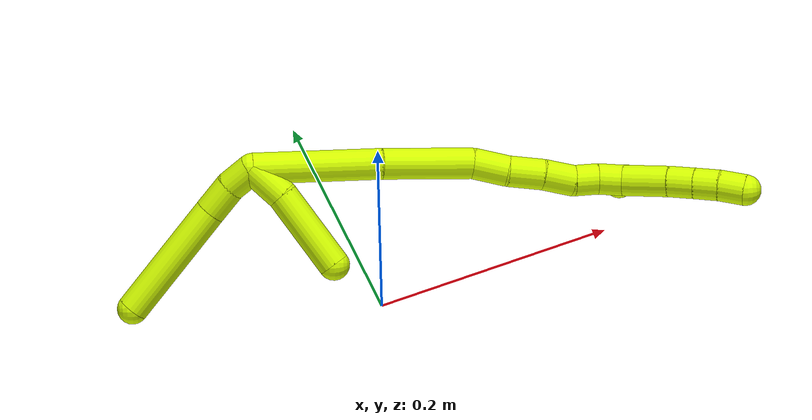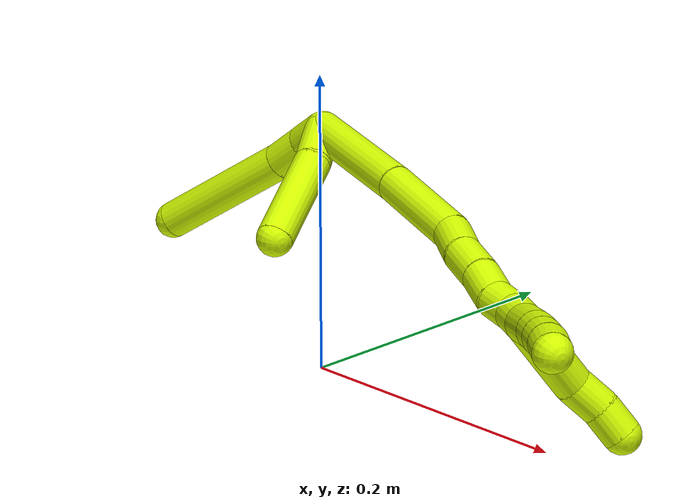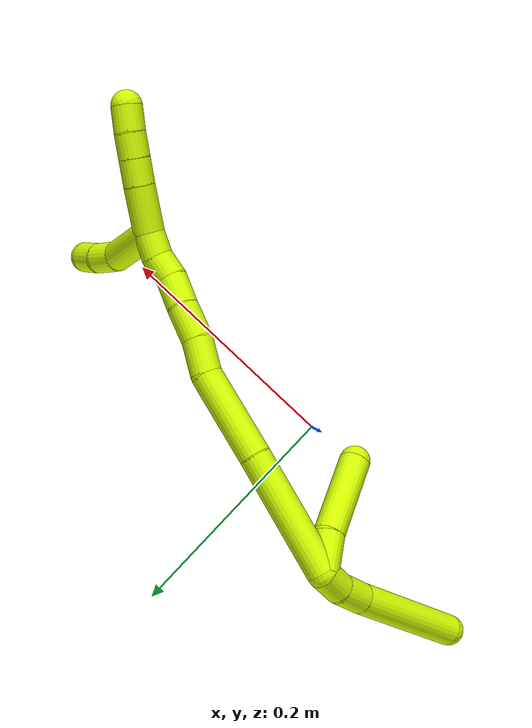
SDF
<sdf version="1.7">
 <world name="default">
  <model name="photoneo_s_sensor">
   <static>1</static>
   <pose>0 0 2 1.57079 1.57079 3.14159</pose>
   <link name="link">
    <inertial><mass>0.1</mass></inertial>
    <sensor name="sensor" type="depth">
     <update_rate>30</update_rate>
     <camera>
      <horizontal_fov>1.22</horizontal_fov>
      <image><width>1920</width><height>1200</height><format>B8G8R8</format></image>
      <clip><near>0.1</near><far>4</far></clip>
      <depth_camera><output>points</output></depth_camera>
     </camera>
     <plugin name="camera_plugin" filename="libgazebo_ros_depth_camera.so">
      <baseline>0.2</baseline>
      <alwaysOn>1</alwaysOn>
      <updateRate>0.0</updateRate>
      <cameraName>camera_ir</cameraName>
      <imageTopicName>/camera/color/image_raw</imageTopicName>
      <cameraInfoTopicName>/camera/color/camera_info</cameraInfoTopicName>
      <depthImageTopicName>/camera/depth/image_raw</depthImageTopicName>
      <depthImageCameraInfoTopicName>/camera/depth/camera_info</depthImageCameraInfoTopicName>
      <pointCloudTopicName>/camera/depth/points</pointCloudTopicName>
      <frameName>fr_optical</frameName>
      <pointCloudCutoff>0.1</pointCloudCutoff>
      <pointCloudCutoffMax>2.0</pointCloudCutoffMax>
      <distortionK1>0</distortionK1>
      <distortionK2>0</distortionK2>
      <distortionK3>0</distortionK3>
      <distortionT1>0</distortionT1>
      <distortionT2>0</distortionT2>
      <CxPrime>0</CxPrime>
      <Cx>0</Cx>
      <Cy>0</Cy>
      <focalLength>0</focalLength>
      <hackBaseline>0</hackBaseline>
     </plugin>
    </sensor>
   </link>
  </model>
  <model name="bin">
   <static>1</static>
   <link name="bottom">
    <collision name="collision-bottom">
     <pose>0 0 -0.01 0 -0 0</pose>
     <geometry><box><size>0.8 0.6 0.02</size></box></geometry>
     <surface>
      <friction><ode><mu>100</mu><mu2>100</mu2></ode></friction>
      <contact><collide_bitmask>65535</collide_bitmask></contact>
     </surface>
    </collision>
   </link>
   <link name="west_wall">
    <collision name="collision-west_wall">
     <pose>-0.41 0 0.1 0 -0 0</pose>
     <geometry><box><size>0.02 0.6 0.2</size></box></geometry>
     <surface>
      <friction><ode><mu>100</mu><mu2>100</mu2></ode></friction>
      <contact><collide_bitmask>65535</collide_bitmask></contact>
     </surface>
    </collision>
   </link>
   <link name="east_wall">
    <collision name="collision-east_wall">
     <pose>0.41 0 0.1 0 -0 0</pose>
     <geometry><box><size>0.02 0.6 0.2</size></box></geometry>
     <surface>
      <friction><ode><mu>100</mu><mu2>100</mu2></ode></friction>
      <contact><collide_bitmask>65535</collide_bitmask></contact>
     </surface>
    </collision>
   </link>
   <link name="south_wall">
    <collision name="collision-south_wall">
     <pose>0 -0.31 0.1 0 -0 0</pose>
     <geometry><box><size>0.8 0.02 0.2</size></box></geometry>
     <surface>
      <friction><ode><mu>100</mu><mu2>100</mu2></ode></friction>
      <contact><collide_bitmask>65535</collide_bitmask></contact>
     </surface>
    </collision>
   </link>
   <link name="north_wall">
    <collision name="collision-north_wall">
     <pose>0 0.31 0.1 0 -0 0</pose>
     <geometry><box><size>0.8 0.02 0.2</size></box></geometry>
     <surface>
      <friction><ode><mu>100</mu><mu2>100</mu2></ode></friction>
      <contact><collide_bitmask>65535</collide_bitmask></contact>
     </surface>
    </collision>
   </link>
  </model>
  <model name="15">
   <static>0</static>
   <link name="15">
    <collision name="collision-cylinder-e_1_2_8">
     <pose>0.006213 -0.004279 -0.009139 2.70371 0.551924 1.80963</pose>
     <geometry><cylinder><radius>0.0125</radius><length>0.0237</length></cylinder></geometry>
     <surface>
      <friction><ode><mu>1.16</mu><mu2>1.16</mu2><slip1>0</slip1><slip2>0</slip2></ode></friction>
      <contact><ode><kp>1e+06</kp><kd>1</kd><max_vel>0</max_vel><min_depth>0.001</min_depth></ode></contact>
     </surface>
    </collision>
    <visual name="visual-cylinder-e_1_2_8">
     <pose>0.006213 -0.004279 -0.009139 2.70371 0.551924 1.80963</pose>
     <geometry><cylinder><radius>0.0125</radius><length>0.0237</length></cylinder></geometry>
     <material><ambient>0.835294 1 0 1</ambient></material>
    </visual>
    <collision name="collision-cylinder-e_2_8_9">
     <pose>0.019079 -0.015809 -0.026937 2.44447 0.532208 1.28706</pose>
     <geometry><cylinder><radius>0.0125</radius><length>0.026217</length></cylinder></geometry>
     <surface>
      <friction><ode><mu>1.16</mu><mu2>1.16</mu2><slip1>0</slip1><slip2>0</slip2></ode></friction>
      <contact><ode><kp>1e+06</kp><kd>1</kd><max_vel>0</max_vel><min_depth>0.001</min_depth></ode></contact>
     </surface>
    </collision>
    <visual name="visual-cylinder-e_2_8_9">
     <pose>0.019079 -0.015809 -0.026937 2.44447 0.532208 1.28706</pose>
     <geometry><cylinder><radius>0.0125</radius><length>0.026217</length></cylinder></geometry>
     <material><ambient>0.835294 1 0 1</ambient></material>
    </visual>
    <collision name="collision-cylinder-e_3_9_6">
     <pose>0.04615 -0.054244 -0.068986 2.39034 0.420321 0.991682</pose>
     <geometry><cylinder><radius>0.0125</radius><length>0.100082</length></cylinder></geometry>
     <surface>
      <friction><ode><mu>1.16</mu><mu2>1.16</mu2><slip1>0</slip1><slip2>0</slip2></ode></friction>
      <contact><ode><kp>1e+06</kp><kd>1</kd><max_vel>0</max_vel><min_depth>0.001</min_depth></ode></contact>
     </surface>
    </collision>
    <visual name="visual-cylinder-e_3_9_6">
     <pose>0.04615 -0.054244 -0.068986 2.39034 0.420321 0.991682</pose>
     <geometry><cylinder><radius>0.0125</radius><length>0.100082</length></cylinder></geometry>
     <material><ambient>0.835294 1 0 1</ambient></material>
    </visual>
    <collision name="collision-cylinder-e_1_2_10">
     <pose>0.004195 -0.010602 0.011205 0.757783 0.265551 0.106249</pose>
     <geometry><cylinder><radius>0.0125</radius><length>0.031972</length></cylinder></geometry>
     <surface>
      <friction><ode><mu>1.16</mu><mu2>1.16</mu2><slip1>0</slip1><slip2>0</slip2></ode></friction>
      <contact><ode><kp>1e+06</kp><kd>1</kd><max_vel>0</max_vel><min_depth>0.001</min_depth></ode></contact>
     </surface>
    </collision>
    <visual name="visual-cylinder-e_1_2_10">
     <pose>0.004195 -0.010602 0.011205 0.757783 0.265551 0.106249</pose>
     <geometry><cylinder><radius>0.0125</radius><length>0.031972</length></cylinder></geometry>
     <material><ambient>0.835294 1 0 1</ambient></material>
    </visual>
    <collision name="collision-cylinder-e_2_10_5">
     <pose>0.019433 -0.047542 0.040884 0.959082 0.330637 0.173091</pose>
     <geometry><cylinder><radius>0.0125</radius><length>0.068028</length></cylinder></geometry>
     <surface>
      <friction><ode><mu>1.16</mu><mu2>1.16</mu2><slip1>0</slip1><slip2>0</slip2></ode></friction>
      <contact><ode><kp>1e+06</kp><kd>1</kd><max_vel>0</max_vel><min_depth>0.001</min_depth></ode></contact>
     </surface>
    </collision>
    <visual name="visual-cylinder-e_2_10_5">
     <pose>0.019433 -0.047542 0.040884 0.959082 0.330637 0.173091</pose>
     <geometry><cylinder><radius>0.0125</radius><length>0.068028</length></cylinder></geometry>
     <material><ambient>0.835294 1 0 1</ambient></material>
    </visual>
    <collision name="collision-cylinder-e_1_2_11">
     <pose>0.004143 0.000328 0.051298 -0.006392 0.080592 -0.000258</pose>
     <geometry><cylinder><radius>0.0125</radius><length>0.102932</length></cylinder></geometry>
     <surface>
      <friction><ode><mu>1.16</mu><mu2>1.16</mu2><slip1>0</slip1><slip2>0</slip2></ode></friction>
      <contact><ode><kp>1e+06</kp><kd>1</kd><max_vel>0</max_vel><min_depth>0.001</min_depth></ode></contact>
     </surface>
    </collision>
    <visual name="visual-cylinder-e_1_2_11">
     <pose>0.004143 0.000328 0.051298 -0.006392 0.080592 -0.000258</pose>
     <geometry><cylinder><radius>0.0125</radius><length>0.102932</length></cylinder></geometry>
     <material><ambient>0.835294 1 0 1</ambient></material>
    </visual>
    <collision name="collision-cylinder-e_2_11_12">
     <pose>0.013808 0.00082 0.138904 -0.004536 0.150917 -0.000343</pose>
     <geometry><cylinder><radius>0.0125</radius><length>0.073453</length></cylinder></geometry>
     <surface>
      <friction><ode><mu>1.16</mu><mu2>1.16</mu2><slip1>0</slip1><slip2>0</slip2></ode></friction>
      <contact><ode><kp>1e+06</kp><kd>1</kd><max_vel>0</max_vel><min_depth>0.001</min_depth></ode></contact>
     </surface>
    </collision>
    <visual name="visual-cylinder-e_2_11_12">
     <pose>0.013808 0.00082 0.138904 -0.004536 0.150917 -0.000343</pose>
     <geometry><cylinder><radius>0.0125</radius><length>0.073453</length></cylinder></geometry>
     <material><ambient>0.835294 1 0 1</ambient></material>
    </visual>
    <collision name="collision-cylinder-e_3_12_13">
     <pose>0.020599 -0.002879 0.189073 0.271888 0.087953 0.012039</pose>
     <geometry><cylinder><radius>0.0125</radius><length>0.028888</length></cylinder></geometry>
     <surface>
      <friction><ode><mu>1.16</mu><mu2>1.16</mu2><slip1>0</slip1><slip2>0</slip2></ode></friction>
      <contact><ode><kp>1e+06</kp><kd>1</kd><max_vel>0</max_vel><min_depth>0.001</min_depth></ode></contact>
     </surface>
    </collision>
    <visual name="visual-cylinder-e_3_12_13">
     <pose>0.020599 -0.002879 0.189073 0.271888 0.087953 0.012039</pose>
     <geometry><cylinder><radius>0.0125</radius><length>0.028888</length></cylinder></geometry>
     <material><ambient>0.835294 1 0 1</ambient></material>
    </visual>
    <collision name="collision-cylinder-e_4_13_14">
     <pose>0.023867 -0.008346 0.216979 0.113626 0.140506 0.008004</pose>
     <geometry><cylinder><radius>0.0125</radius><length>0.028557</length></cylinder></geometry>
     <surface>
      <friction><ode><mu>1.16</mu><mu2>1.16</mu2><slip1>0</slip1><slip2>0</slip2></ode></friction>
      <contact><ode><kp>1e+06</kp><kd>1</kd><max_vel>0</max_vel><min_depth>0.001</min_depth></ode></contact>
     </surface>
    </collision>
    <visual name="visual-cylinder-e_4_13_14">
     <pose>0.023867 -0.008346 0.216979 0.113626 0.140506 0.008004</pose>
     <geometry><cylinder><radius>0.0125</radius><length>0.028557</length></cylinder></geometry>
     <material><ambient>0.835294 1 0 1</ambient></material>
    </visual>
    <collision name="collision-cylinder-e_5_14_15">
     <pose>0.028737 -0.012242 0.24324 0.185603 0.226955 0.021213</pose>
     <geometry><cylinder><radius>0.0125</radius><length>0.02551</length></cylinder></geometry>
     <surface>
      <friction><ode><mu>1.16</mu><mu2>1.16</mu2><slip1>0</slip1><slip2>0</slip2></ode></friction>
      <contact><ode><kp>1e+06</kp><kd>1</kd><max_vel>0</max_vel><min_depth>0.001</min_depth></ode></contact>
     </surface>
    </collision>
    <visual name="visual-cylinder-e_5_14_15">
     <pose>0.028737 -0.012242 0.24324 0.185603 0.226955 0.021213</pose>
     <geometry><cylinder><radius>0.0125</radius><length>0.02551</length></cylinder></geometry>
     <material><ambient>0.835294 1 0 1</ambient></material>
    </visual>
    <collision name="collision-cylinder-e_6_15_16">
     <pose>0.03291 -0.01384 0.265502 -0.069056 0.128705 -0.004452</pose>
     <geometry><cylinder><radius>0.0125</radius><length>0.020312</length></cylinder></geometry>
     <surface>
      <friction><ode><mu>1.16</mu><mu2>1.16</mu2><slip1>0</slip1><slip2>0</slip2></ode></friction>
      <contact><ode><kp>1e+06</kp><kd>1</kd><max_vel>0</max_vel><min_depth>0.001</min_depth></ode></contact>
     </surface>
    </collision>
    <visual name="visual-cylinder-e_6_15_16">
     <pose>0.03291 -0.01384 0.265502 -0.069056 0.128705 -0.004452</pose>
     <geometry><cylinder><radius>0.0125</radius><length>0.020312</length></cylinder></geometry>
     <material><ambient>0.835294 1 0 1</ambient></material>
    </visual>
    <collision name="collision-cylinder-e_7_16_1">
     <pose>0.033588 -0.014799 0.28557 0.163515 -0.061511 -0.005042</pose>
     <geometry><cylinder><radius>0.0125</radius><length>0.020348</length></cylinder></geometry>
     <surface>
      <friction><ode><mu>1.16</mu><mu2>1.16</mu2><slip1>0</slip1><slip2>0</slip2></ode></friction>
      <contact><ode><kp>1e+06</kp><kd>1</kd><max_vel>0</max_vel><min_depth>0.001</min_depth></ode></contact>
     </surface>
    </collision>
    <visual name="visual-cylinder-e_7_16_1">
     <pose>0.033588 -0.014799 0.28557 0.163515 -0.061511 -0.005042</pose>
     <geometry><cylinder><radius>0.0125</radius><length>0.020348</length></cylinder></geometry>
     <material><ambient>0.835294 1 0 1</ambient></material>
    </visual>
    <collision name="collision-cylinder-e_1_1_17">
     <pose>0.058604 -0.006256 0.297151 -1.41883 1.18834 -1.0512</pose>
     <geometry><cylinder><radius>0.0125</radius><length>0.055276</length></cylinder></geometry>
     <surface>
      <friction><ode><mu>1.16</mu><mu2>1.16</mu2><slip1>0</slip1><slip2>0</slip2></ode></friction>
      <contact><ode><kp>1e+06</kp><kd>1</kd><max_vel>0</max_vel><min_depth>0.001</min_depth></ode></contact>
     </surface>
    </collision>
    <visual name="visual-cylinder-e_1_1_17">
     <pose>0.058604 -0.006256 0.297151 -1.41883 1.18834 -1.0512</pose>
     <geometry><cylinder><radius>0.0125</radius><length>0.055276</length></cylinder></geometry>
     <material><ambient>0.835294 1 0 1</ambient></material>
    </visual>
    <collision name="collision-cylinder-e_2_17_18">
     <pose>0.093625 0.009301 0.302896 -0.908183 0.943433 -0.488072</pose>
     <geometry><cylinder><radius>0.0125</radius><length>0.023172</length></cylinder></geometry>
     <surface>
      <friction><ode><mu>1.16</mu><mu2>1.16</mu2><slip1>0</slip1><slip2>0</slip2></ode></friction>
      <contact><ode><kp>1e+06</kp><kd>1</kd><max_vel>0</max_vel><min_depth>0.001</min_depth></ode></contact>
     </surface>
    </collision>
    <visual name="visual-cylinder-e_2_17_18">
     <pose>0.093625 0.009301 0.302896 -0.908183 0.943433 -0.488072</pose>
     <geometry><cylinder><radius>0.0125</radius><length>0.023172</length></cylinder></geometry>
     <material><ambient>0.835294 1 0 1</ambient></material>
    </visual>
    <collision name="collision-cylinder-e_3_18_4">
     <pose>0.112353 0.017649 0.311533 -0.590665 1.05008 -0.348881</pose>
     <geometry><cylinder><radius>0.0125</radius><length>0.021552</length></cylinder></geometry>
     <surface>
      <friction><ode><mu>1.16</mu><mu2>1.16</mu2><slip1>0</slip1><slip2>0</slip2></ode></friction>
      <contact><ode><kp>1e+06</kp><kd>1</kd><max_vel>0</max_vel><min_depth>0.001</min_depth></ode></contact>
     </surface>
    </collision>
    <visual name="visual-cylinder-e_3_18_4">
     <pose>0.112353 0.017649 0.311533 -0.590665 1.05008 -0.348881</pose>
     <geometry><cylinder><radius>0.0125</radius><length>0.021552</length></cylinder></geometry>
     <material><ambient>0.835294 1 0 1</ambient></material>
    </visual>
    <collision name="collision-cylinder-e_1_1_19">
     <pose>0.027148 -0.020769 0.313075 0.242064 -0.312287 -0.03829</pose>
     <geometry><cylinder><radius>0.0125</radius><length>0.037853</length></cylinder></geometry>
     <surface>
      <friction><ode><mu>1.16</mu><mu2>1.16</mu2><slip1>0</slip1><slip2>0</slip2></ode></friction>
      <contact><ode><kp>1e+06</kp><kd>1</kd><max_vel>0</max_vel><min_depth>0.001</min_depth></ode></contact>
     </surface>
    </collision>
    <visual name="visual-cylinder-e_1_1_19">
     <pose>0.027148 -0.020769 0.313075 0.242064 -0.312287 -0.03829</pose>
     <geometry><cylinder><radius>0.0125</radius><length>0.037853</length></cylinder></geometry>
     <material><ambient>0.835294 1 0 1</ambient></material>
    </visual>
    <collision name="collision-cylinder-e_2_19_20">
     <pose>0.018443 -0.027895 0.340354 0.279305 -0.276452 -0.039105</pose>
     <geometry><cylinder><radius>0.0125</radius><length>0.02118</length></cylinder></geometry>
     <surface>
      <friction><ode><mu>1.16</mu><mu2>1.16</mu2><slip1>0</slip1><slip2>0</slip2></ode></friction>
      <contact><ode><kp>1e+06</kp><kd>1</kd><max_vel>0</max_vel><min_depth>0.001</min_depth></ode></contact>
     </surface>
    </collision>
    <visual name="visual-cylinder-e_2_19_20">
     <pose>0.018443 -0.027895 0.340354 0.279305 -0.276452 -0.039105</pose>
     <geometry><cylinder><radius>0.0125</radius><length>0.02118</length></cylinder></geometry>
     <material><ambient>0.835294 1 0 1</ambient></material>
    </visual>
    <collision name="collision-cylinder-e_3_20_21">
     <pose>0.013002 -0.033386 0.359466 0.280232 -0.257123 -0.036462</pose>
     <geometry><cylinder><radius>0.0125</radius><length>0.020054</length></cylinder></geometry>
     <surface>
      <friction><ode><mu>1.16</mu><mu2>1.16</mu2><slip1>0</slip1><slip2>0</slip2></ode></friction>
      <contact><ode><kp>1e+06</kp><kd>1</kd><max_vel>0</max_vel><min_depth>0.001</min_depth></ode></contact>
     </surface>
    </collision>
    <visual name="visual-cylinder-e_3_20_21">
     <pose>0.013002 -0.033386 0.359466 0.280232 -0.257123 -0.036462</pose>
     <geometry><cylinder><radius>0.0125</radius><length>0.020054</length></cylinder></geometry>
     <material><ambient>0.835294 1 0 1</ambient></material>
    </visual>
    <collision name="collision-cylinder-e_4_21_3">
     <pose>0.008497 -0.039606 0.378429 0.351589 -0.188122 -0.033512</pose>
     <geometry><cylinder><radius>0.0125</radius><length>0.020913</length></cylinder></geometry>
     <surface>
      <friction><ode><mu>1.16</mu><mu2>1.16</mu2><slip1>0</slip1><slip2>0</slip2></ode></friction>
      <contact><ode><kp>1e+06</kp><kd>1</kd><max_vel>0</max_vel><min_depth>0.001</min_depth></ode></contact>
     </surface>
    </collision>
    <visual name="visual-cylinder-e_4_21_3">
     <pose>0.008497 -0.039606 0.378429 0.351589 -0.188122 -0.033512</pose>
     <geometry><cylinder><radius>0.0125</radius><length>0.020913</length></cylinder></geometry>
     <material><ambient>0.835294 1 0 1</ambient></material>
    </visual>
    <collision name="collision-sphere-3">
     <pose>0.006541 -0.043143 0.388073 0 -0 0</pose>
     <geometry><sphere><radius>0.0125</radius></sphere></geometry>
     <surface>
      <friction><ode><mu>1.16</mu><mu2>1.16</mu2><slip1>0</slip1><slip2>0</slip2></ode></friction>
      <contact><ode><kp>1e+06</kp><kd>1</kd><max_vel>0</max_vel><min_depth>0.001</min_depth></ode></contact>
     </surface>
    </collision>
    <visual name="visual-sphere-3">
     <pose>0.006541 -0.043143 0.388073 0 -0 0</pose>
     <geometry><sphere><radius>0.0125</radius></sphere></geometry>
     <material><ambient>0.835294 1 0 1</ambient></material>
    </visual>
    <collision name="collision-sphere-21">
     <pose>0.010452 -0.036068 0.368785 0 -0 0</pose>
     <geometry><sphere><radius>0.0125</radius></sphere></geometry>
     <surface>
      <friction><ode><mu>1.16</mu><mu2>1.16</mu2><slip1>0</slip1><slip2>0</slip2></ode></friction>
      <contact><ode><kp>1e+06</kp><kd>1</kd><max_vel>0</max_vel><min_depth>0.001</min_depth></ode></contact>
     </surface>
    </collision>
    <visual name="visual-sphere-21">
     <pose>0.010452 -0.036068 0.368785 0 -0 0</pose>
     <geometry><sphere><radius>0.0125</radius></sphere></geometry>
     <material><ambient>0.835294 1 0 1</ambient></material>
    </visual>
    <collision name="collision-sphere-20">
     <pose>0.015552 -0.030704 0.350147 0 -0 0</pose>
     <geometry><sphere><radius>0.0125</radius></sphere></geometry>
     <surface>
      <friction><ode><mu>1.16</mu><mu2>1.16</mu2><slip1>0</slip1><slip2>0</slip2></ode></friction>
      <contact><ode><kp>1e+06</kp><kd>1</kd><max_vel>0</max_vel><min_depth>0.001</min_depth></ode></contact>
     </surface>
    </collision>
    <visual name="visual-sphere-20">
     <pose>0.015552 -0.030704 0.350147 0 -0 0</pose>
     <geometry><sphere><radius>0.0125</radius></sphere></geometry>
     <material><ambient>0.835294 1 0 1</ambient></material>
    </visual>
    <collision name="collision-sphere-19">
     <pose>0.021333 -0.025086 0.330561 0 -0 0</pose>
     <geometry><sphere><radius>0.0125</radius></sphere></geometry>
     <surface>
      <friction><ode><mu>1.16</mu><mu2>1.16</mu2><slip1>0</slip1><slip2>0</slip2></ode></friction>
      <contact><ode><kp>1e+06</kp><kd>1</kd><max_vel>0</max_vel><min_depth>0.001</min_depth></ode></contact>
     </surface>
    </collision>
    <visual name="visual-sphere-19">
     <pose>0.021333 -0.025086 0.330561 0 -0 0</pose>
     <geometry><sphere><radius>0.0125</radius></sphere></geometry>
     <material><ambient>0.835294 1 0 1</ambient></material>
    </visual>
    <collision name="collision-sphere-5">
     <pose>0.030476 -0.07388 0.05936 0 -0 0</pose>
     <geometry><sphere><radius>0.0125</radius></sphere></geometry>
     <surface>
      <friction><ode><mu>1.16</mu><mu2>1.16</mu2><slip1>0</slip1><slip2>0</slip2></ode></friction>
      <contact><ode><kp>1e+06</kp><kd>1</kd><max_vel>0</max_vel><min_depth>0.001</min_depth></ode></contact>
     </surface>
    </collision>
    <visual name="visual-sphere-5">
     <pose>0.030476 -0.07388 0.05936 0 -0 0</pose>
     <geometry><sphere><radius>0.0125</radius></sphere></geometry>
     <material><ambient>0.835294 1 0 1</ambient></material>
    </visual>
    <collision name="collision-sphere-10">
     <pose>0.008391 -0.021204 0.022409 0 -0 0</pose>
     <geometry><sphere><radius>0.0125</radius></sphere></geometry>
     <surface>
      <friction><ode><mu>1.16</mu><mu2>1.16</mu2><slip1>0</slip1><slip2>0</slip2></ode></friction>
      <contact><ode><kp>1e+06</kp><kd>1</kd><max_vel>0</max_vel><min_depth>0.001</min_depth></ode></contact>
     </surface>
    </collision>
    <visual name="visual-sphere-10">
     <pose>0.008391 -0.021204 0.022409 0 -0 0</pose>
     <geometry><sphere><radius>0.0125</radius></sphere></geometry>
     <material><ambient>0.835294 1 0 1</ambient></material>
    </visual>
    <collision name="collision-sphere-6">
     <pose>0.066569 -0.085427 -0.102375 0 -0 0</pose>
     <geometry><sphere><radius>0.0125</radius></sphere></geometry>
     <surface>
      <friction><ode><mu>1.16</mu><mu2>1.16</mu2><slip1>0</slip1><slip2>0</slip2></ode></friction>
      <contact><ode><kp>1e+06</kp><kd>1</kd><max_vel>0</max_vel><min_depth>0.001</min_depth></ode></contact>
     </surface>
    </collision>
    <visual name="visual-sphere-6">
     <pose>0.066569 -0.085427 -0.102375 0 -0 0</pose>
     <geometry><sphere><radius>0.0125</radius></sphere></geometry>
     <material><ambient>0.835294 1 0 1</ambient></material>
    </visual>
    <collision name="collision-sphere-9">
     <pose>0.02573 -0.023061 -0.035598 0 -0 0</pose>
     <geometry><sphere><radius>0.0125</radius></sphere></geometry>
     <surface>
      <friction><ode><mu>1.16</mu><mu2>1.16</mu2><slip1>0</slip1><slip2>0</slip2></ode></friction>
      <contact><ode><kp>1e+06</kp><kd>1</kd><max_vel>0</max_vel><min_depth>0.001</min_depth></ode></contact>
     </surface>
    </collision>
    <visual name="visual-sphere-9">
     <pose>0.02573 -0.023061 -0.035598 0 -0 0</pose>
     <geometry><sphere><radius>0.0125</radius></sphere></geometry>
     <material><ambient>0.835294 1 0 1</ambient></material>
    </visual>
    <collision name="collision-sphere-2">
     <geometry><sphere><radius>0.0125</radius></sphere></geometry>
     <surface>
      <friction><ode><mu>1.16</mu><mu2>1.16</mu2><slip1>0</slip1><slip2>0</slip2></ode></friction>
      <contact><ode><kp>1e+06</kp><kd>1</kd><max_vel>0</max_vel><min_depth>0.001</min_depth></ode></contact>
     </surface>
    </collision>
    <visual name="visual-sphere-2">
     <geometry><sphere><radius>0.0125</radius></sphere></geometry>
     <material><ambient>0.835294 1 0 1</ambient></material>
    </visual>
    <collision name="collision-sphere-8">
     <pose>0.012427 -0.008557 -0.018277 0 -0 0</pose>
     <geometry><sphere><radius>0.0125</radius></sphere></geometry>
     <surface>
      <friction><ode><mu>1.16</mu><mu2>1.16</mu2><slip1>0</slip1><slip2>0</slip2></ode></friction>
      <contact><ode><kp>1e+06</kp><kd>1</kd><max_vel>0</max_vel><min_depth>0.001</min_depth></ode></contact>
     </surface>
    </collision>
    <visual name="visual-sphere-8">
     <pose>0.012427 -0.008557 -0.018277 0 -0 0</pose>
     <geometry><sphere><radius>0.0125</radius></sphere></geometry>
     <material><ambient>0.835294 1 0 1</ambient></material>
    </visual>
    <collision name="collision-sphere-11">
     <pose>0.008287 0.000656 0.102596 0 -0 0</pose>
     <geometry><sphere><radius>0.0125</radius></sphere></geometry>
     <surface>
      <friction><ode><mu>1.16</mu><mu2>1.16</mu2><slip1>0</slip1><slip2>0</slip2></ode></friction>
      <contact><ode><kp>1e+06</kp><kd>1</kd><max_vel>0</max_vel><min_depth>0.001</min_depth></ode></contact>
     </surface>
    </collision>
    <visual name="visual-sphere-11">
     <pose>0.008287 0.000656 0.102596 0 -0 0</pose>
     <geometry><sphere><radius>0.0125</radius></sphere></geometry>
     <material><ambient>0.835294 1 0 1</ambient></material>
    </visual>
    <collision name="collision-sphere-12">
     <pose>0.01933 0.000985 0.175213 0 -0 0</pose>
     <geometry><sphere><radius>0.0125</radius></sphere></geometry>
     <surface>
      <friction><ode><mu>1.16</mu><mu2>1.16</mu2><slip1>0</slip1><slip2>0</slip2></ode></friction>
      <contact><ode><kp>1e+06</kp><kd>1</kd><max_vel>0</max_vel><min_depth>0.001</min_depth></ode></contact>
     </surface>
    </collision>
    <visual name="visual-sphere-12">
     <pose>0.01933 0.000985 0.175213 0 -0 0</pose>
     <geometry><sphere><radius>0.0125</radius></sphere></geometry>
     <material><ambient>0.835294 1 0 1</ambient></material>
    </visual>
    <collision name="collision-sphere-13">
     <pose>0.021867 -0.006743 0.202932 0 -0 0</pose>
     <geometry><sphere><radius>0.0125</radius></sphere></geometry>
     <surface>
      <friction><ode><mu>1.16</mu><mu2>1.16</mu2><slip1>0</slip1><slip2>0</slip2></ode></friction>
      <contact><ode><kp>1e+06</kp><kd>1</kd><max_vel>0</max_vel><min_depth>0.001</min_depth></ode></contact>
     </surface>
    </collision>
    <visual name="visual-sphere-13">
     <pose>0.021867 -0.006743 0.202932 0 -0 0</pose>
     <geometry><sphere><radius>0.0125</radius></sphere></geometry>
     <material><ambient>0.835294 1 0 1</ambient></material>
    </visual>
    <collision name="collision-sphere-14">
     <pose>0.025867 -0.009949 0.231025 0 -0 0</pose>
     <geometry><sphere><radius>0.0125</radius></sphere></geometry>
     <surface>
      <friction><ode><mu>1.16</mu><mu2>1.16</mu2><slip1>0</slip1><slip2>0</slip2></ode></friction>
      <contact><ode><kp>1e+06</kp><kd>1</kd><max_vel>0</max_vel><min_depth>0.001</min_depth></ode></contact>
     </surface>
    </collision>
    <visual name="visual-sphere-14">
     <pose>0.025867 -0.009949 0.231025 0 -0 0</pose>
     <geometry><sphere><radius>0.0125</radius></sphere></geometry>
     <material><ambient>0.835294 1 0 1</ambient></material>
    </visual>
    <collision name="collision-sphere-15">
     <pose>0.031607 -0.014535 0.255454 0 -0 0</pose>
     <geometry><sphere><radius>0.0125</radius></sphere></geometry>
     <surface>
      <friction><ode><mu>1.16</mu><mu2>1.16</mu2><slip1>0</slip1><slip2>0</slip2></ode></friction>
      <contact><ode><kp>1e+06</kp><kd>1</kd><max_vel>0</max_vel><min_depth>0.001</min_depth></ode></contact>
     </surface>
    </collision>
    <visual name="visual-sphere-15">
     <pose>0.031607 -0.014535 0.255454 0 -0 0</pose>
     <geometry><sphere><radius>0.0125</radius></sphere></geometry>
     <material><ambient>0.835294 1 0 1</ambient></material>
    </visual>
    <collision name="collision-sphere-16">
     <pose>0.034214 -0.013146 0.27555 0 -0 0</pose>
     <geometry><sphere><radius>0.0125</radius></sphere></geometry>
     <surface>
      <friction><ode><mu>1.16</mu><mu2>1.16</mu2><slip1>0</slip1><slip2>0</slip2></ode></friction>
      <contact><ode><kp>1e+06</kp><kd>1</kd><max_vel>0</max_vel><min_depth>0.001</min_depth></ode></contact>
     </surface>
    </collision>
    <visual name="visual-sphere-16">
     <pose>0.034214 -0.013146 0.27555 0 -0 0</pose>
     <geometry><sphere><radius>0.0125</radius></sphere></geometry>
     <material><ambient>0.835294 1 0 1</ambient></material>
    </visual>
    <collision name="collision-sphere-1">
     <pose>0.032963 -0.016452 0.295589 0 -0 0</pose>
     <geometry><sphere><radius>0.0125</radius></sphere></geometry>
     <surface>
      <friction><ode><mu>1.16</mu><mu2>1.16</mu2><slip1>0</slip1><slip2>0</slip2></ode></friction>
      <contact><ode><kp>1e+06</kp><kd>1</kd><max_vel>0</max_vel><min_depth>0.001</min_depth></ode></contact>
     </surface>
    </collision>
    <visual name="visual-sphere-1">
     <pose>0.032963 -0.016452 0.295589 0 -0 0</pose>
     <geometry><sphere><radius>0.0125</radius></sphere></geometry>
     <material><ambient>0.835294 1 0 1</ambient></material>
    </visual>
    <collision name="collision-sphere-18">
     <pose>0.103005 0.014663 0.30708 0 -0 0</pose>
     <geometry><sphere><radius>0.0125</radius></sphere></geometry>
     <surface>
      <friction><ode><mu>1.16</mu><mu2>1.16</mu2><slip1>0</slip1><slip2>0</slip2></ode></friction>
      <contact><ode><kp>1e+06</kp><kd>1</kd><max_vel>0</max_vel><min_depth>0.001</min_depth></ode></contact>
     </surface>
    </collision>
    <visual name="visual-sphere-18">
     <pose>0.103005 0.014663 0.30708 0 -0 0</pose>
     <geometry><sphere><radius>0.0125</radius></sphere></geometry>
     <material><ambient>0.835294 1 0 1</ambient></material>
    </visual>
    <collision name="collision-sphere-17">
     <pose>0.084245 0.00394 0.298712 0 -0 0</pose>
     <geometry><sphere><radius>0.0125</radius></sphere></geometry>
     <surface>
      <friction><ode><mu>1.16</mu><mu2>1.16</mu2><slip1>0</slip1><slip2>0</slip2></ode></friction>
      <contact><ode><kp>1e+06</kp><kd>1</kd><max_vel>0</max_vel><min_depth>0.001</min_depth></ode></contact>
     </surface>
    </collision>
    <visual name="visual-sphere-17">
     <pose>0.084245 0.00394 0.298712 0 -0 0</pose>
     <geometry><sphere><radius>0.0125</radius></sphere></geometry>
     <material><ambient>0.835294 1 0 1</ambient></material>
    </visual>
    <collision name="collision-sphere-4">
     <pose>0.1217 0.020635 0.315985 0 -0 0</pose>
     <geometry><sphere><radius>0.0125</radius></sphere></geometry>
     <surface>
      <friction><ode><mu>1.16</mu><mu2>1.16</mu2><slip1>0</slip1><slip2>0</slip2></ode></friction>
      <contact><ode><kp>1e+06</kp><kd>1</kd><max_vel>0</max_vel><min_depth>0.001</min_depth></ode></contact>
     </surface>
    </collision>
    <visual name="visual-sphere-4">
     <pose>0.1217 0.020635 0.315985 0 -0 0</pose>
     <geometry><sphere><radius>0.0125</radius></sphere></geometry>
     <material><ambient>0.835294 1 0 1</ambient></material>
    </visual>
    <inertial>
     <pose>0.028282 -0.017686 0.138937 0 -0 0</pose>
     <mass>0.75</mass>
     <inertia>
      <ixx>0.000315</ixx>
      <ixy>0</ixy>
      <ixz>0</ixz>
      <iyy>0.000233</iyy>
      <iyz>0</iyz>
      <izz>2.9e-05</izz>
     </inertia>
    </inertial>
   </link>
   <pose>-0.077043 0.076293 0.128621 1.57555 1.31725 1.26092</pose>
  </model>
 </world>
</sdf>
